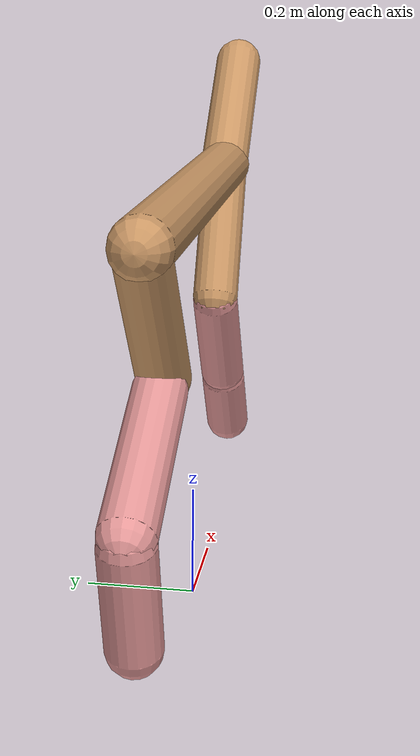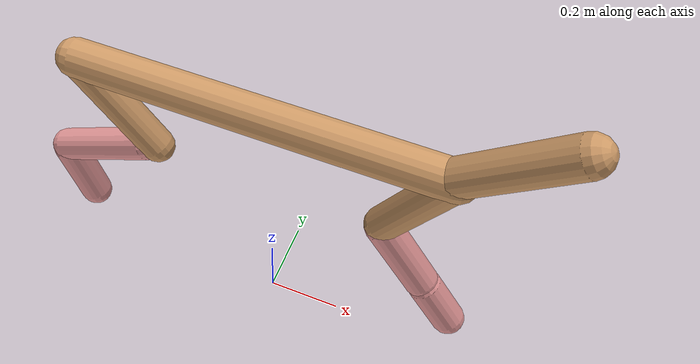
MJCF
<mujoco model="cheetah">
  <compiler angle="radian" coordinate="local" inertiafromgeom="true" settotalmass="14" />
  <default>
    <joint armature=".1" damping=".01" limited="true" solimplimit="0 .8 .03" solreflimit=".02 1" stiffness="8" />
    <geom conaffinity="0" condim="3" contype="1" friction="0.8 .1 .1" rgba="0.8 0.6 .4 1" solimp="0.0 0.8 0.01" solref="0.02 1" />
    <motor ctrllimited="true" ctrlrange="-1 1" />
  </default>
  <size nstack="300000" nuser_geom="1" />
  <option gravity="0 0 -9.81" timestep="0.01" />
  <worldbody>
    <body name="torso" pos="0.0 0.0 0.7451118196051311">
      <joint armature="0" axis="1 0 0" damping="0" limited="false" name="ignorex" pos="0 0 0" stiffness="0" type="slide" />
      <joint armature="0" axis="0 0 1" damping="0" limited="false" name="ignorez" pos="0 0 0" stiffness="0" type="slide" />
      <joint armature="0" axis="0 1 0" damping="0" limited="false" name="ignorey" pos="0 0 0" stiffness="0" type="hinge" />
      <geom fromto="-0.5 0.0 0.0 0.4287348098961173 0.0 0.0" name="torso" size="0.04886105969565086" type="capsule" />
      <geom axisangle="0 1 0 .87" name="head" pos="0.5287348098961172 0.0 0.1" size="0.047260882846113024 0.15" type="capsule" />

      <body name="bthigh" pos="-.5 0 0">
        <joint axis="0 1 0" damping="6" name="bthigh" pos="0 0 0" range="-.52 1.05" stiffness="240" type="hinge" />
        <geom axisangle="0 1 0 -3.8" name="bthigh" pos="0.09827761879387084 0.0 -0.12776090443203209" size="0.043768479001059166 0.14217508478326862" type="capsule" />
        <body name="bshin" pos="0.15655523758774167 0.0 -0.24552180886406416">
          <joint axis="0 1 0" damping="4.5" name="bshin" pos="0 0 0" range="-.785 .785" stiffness="180" type="hinge" />
          <geom axisangle="0 1 0 -2.03" name="bshin" pos="-0.13738619208746833 0.0 -0.06869309604373416" rgba="0.9 0.6 0.6 1" size="0.043768479001059166 0.14707767391372614" type="capsule" />
          <body name="bfoot" pos="-0.27477238417493666 0.0 -0.13738619208746833">
            <joint axis="0 1 0" damping="3" name="bfoot" pos="0 0 0" range="-.4 .785" stiffness="120" type="hinge" />
            <geom axisangle="0 1 0 -.27" name="bfoot" pos="0.029458899102493795 0.0 -0.0952504404313966" rgba="0.9 0.6 0.6 1" size="0.043768479001059166 0.09216867565260173" type="capsule" />
            <inertial mass="10" />
          </body>
        </body>
      </body>
      <body name="fthigh" pos="0.42873480989611723 0.0 0.0">
        <joint axis="0 1 0" damping="4.5" name="fthigh" pos="0 0 0" range="-1.5 0.8" stiffness="180" type="hinge" />
        <geom axisangle="0 1 0 .52" name="fthigh" pos="-0.07316230299312075 0.0 -0.12542109084534986" size="0.04433912472299916 0.13927601674422851" type="capsule" />
        <body name="fshin" pos="-0.1463246059862415 0.0 -0.2508421816906997">
          <joint axis="0 1 0" damping="3" name="fshin" pos="0 0 0" range="-1.2 1.1" stiffness="120" type="hinge" />
          <geom axisangle="0 1 0 -.6" name="fshin" pos="0.06792858754186895 0.0 -0.09405496736566468" rgba="0.9 0.6 0.6 1" size="0.04433912472299916 0.1110019381570543" type="capsule" />
          <body name="ffoot" pos="0.1358571750837379 0.0 -0.18810993473132936">
            <joint axis="0 1 0" damping="1.5" name="ffoot" pos="0 0 0" range="-3.1 -0.3" stiffness="60" type="hinge" />
            <geom axisangle="0 1 0 -.6" name="ffoot" pos="0.04678621247244852 0.0 -0.07277855273491993" rgba="0.9 0.6 0.6 1" size="0.04433912472299916 0.0733031667074887" type="capsule" />
            <inertial mass="10" />
          </body>
        </body>
      </body>
    </body>
  </worldbody>
  <actuator>
    <motor gear="120" joint="bthigh" name="bthigh" />
    <motor gear="90" joint="bshin" name="bshin" />
    <motor gear="60" joint="bfoot" name="bfoot" />
    <motor gear="120" joint="fthigh" name="fthigh" />
    <motor gear="60" joint="fshin" name="fshin" />
    <motor gear="30" joint="ffoot" name="ffoot" />
  </actuator>
</mujoco>
